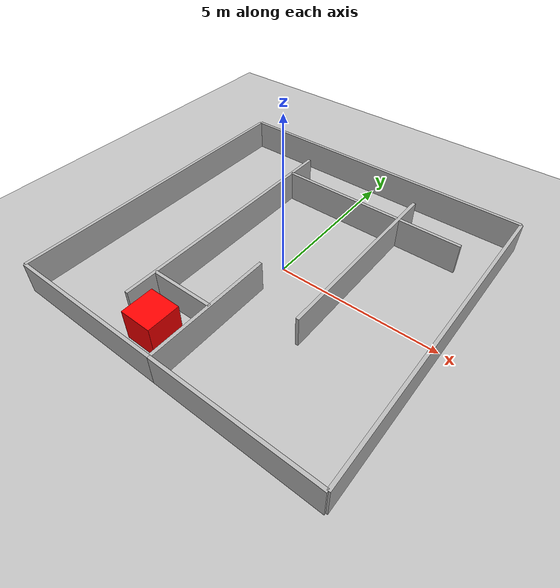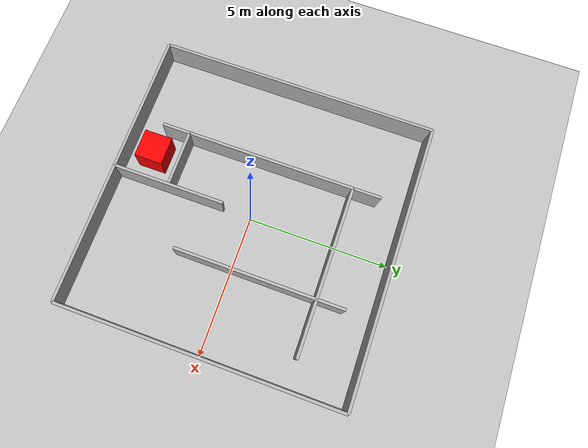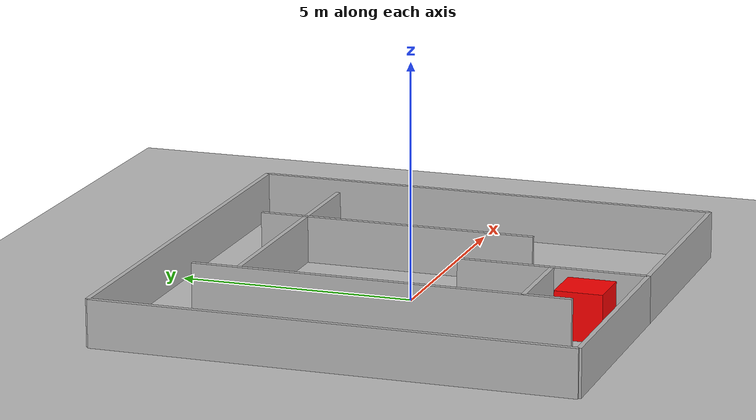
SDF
<?xml version="1.0" ?>
<sdf version="1.7">
  <world name="maze_lidar_world">
    <!-- SPAWN SPECIFICATION -->

    <!-- Core sim systems -->
    <plugin filename="gz-sim-physics-system" name="gz::sim::systems::Physics"/>
    <plugin filename="gz-sim-user-commands-system" name="gz::sim::systems::UserCommands"/>
    <plugin filename="gz-sim-scene-broadcaster-system" name="gz::sim::systems::SceneBroadcaster"/>
    <plugin filename="gz-sim-sensors-system" name="gz::sim::systems::Sensors">
      <render_engine>ogre2</render_engine>
    </plugin>

    <!-- coordinate system {-->
    <spherical_coordinates>
      <surface_model>EARTH_WGS84</surface_model>
      <latitude_deg>47.397743</latitude_deg>
      <longitude_deg>8.545594</longitude_deg>
      <elevation>0.0</elevation>
      <heading_deg>0</heading_deg>
    </spherical_coordinates>

    <!-- Light -->
    <light name="sun" type="directional">
      <cast_shadows>true</cast_shadows>
      <pose>0 0 10 0 0 0</pose>
      <diffuse>1 1 1 1</diffuse>
      <specular>0.1 0.1 0.1 1</specular>
      <direction>-0.5 0.1 -1</direction>
    </light>

    <!-- Ground plane -->
    <model name="ground_plane">
      <static>true</static>
      <link name="link">
        <collision name="collision">
          <geometry>
            <plane>
              <normal>0 0 1</normal>
              <size>50 50</size>
            </plane>
          </geometry>
        </collision>
        <visual name="visual">
          <geometry>
            <plane>
              <normal>0 0 1</normal>
              <size>50 50</size>
            </plane>
          </geometry>
          <material>
            <diffuse>0.75 0.75 0.75 1</diffuse>
            <specular>0.1 0.1 0.1 1</specular>
          </material>
        </visual>
      </link>
    </model>

    <!-- Simple maze (static)  -->
    <!-- Maze tuning:
         wall_thickness = 0.10
         wall_height    = 1.00
         wall_z         = wall_height/2 = 0.50
         Maze roughly spans x,y in [-5, +5]
    -->

    <model name="maze_walls">
      <static>true</static>
      <pose>0 0 0 0 0 0</pose>

      <link name="walls">

        <!-- Outer boundary (rectangle with an opening at the bottom) -->
        <!-- Top -->
        <collision name="c_top">
          <pose>0 5 0.50 0 0 0</pose>
          <geometry><box><size>10 0.10 1.00</size></box></geometry>
        </collision>
        <visual name="v_top">
          <pose>0 5 0.50 0 0 0</pose>
          <geometry><box><size>10 0.10 1.00</size></box></geometry>
        </visual>

        <!-- Left -->
        <collision name="c_left">
          <pose>-5 0 0.50 0 0 0</pose>
          <geometry><box><size>0.10 10 1.00</size></box></geometry>
        </collision>
        <visual name="v_left">
          <pose>-5 0 0.50 0 0 0</pose>
          <geometry><box><size>0.10 10 1.00</size></box></geometry>
        </visual>

        <!-- Right -->
        <collision name="c_right">
          <pose>5 0 0.50 0 0 0</pose>
          <geometry><box><size>0.10 10 1.00</size></box></geometry>
        </collision>
        <visual name="v_right">
          <pose>5 0 0.50 0 0 0</pose>
          <geometry><box><size>0.10 10 1.00</size></box></geometry>
        </visual>

        <!-- Bottom split into two pieces (opening centered at y=-5) -->
        <collision name="c_bot_left">
          <pose>-2.5 -5 0.50 0 0 0</pose>
          <geometry><box><size>5 0.10 1.00</size></box></geometry>
        </collision>
        <visual name="v_bot_left">
          <pose>-2.5 -5 0.50 0 0 0</pose>
          <geometry><box><size>5 0.10 1.00</size></box></geometry>
        </visual>

        <collision name="c_bot_right">
          <pose>2.5 -5 0.50 0 0 0</pose>
          <geometry><box><size>5 0.10 1.00</size></box></geometry>
        </collision>
        <visual name="v_bot_right">
          <pose>2.5 -5 0.50 0 0 0</pose>
          <geometry><box><size>5 0.10 1.00</size></box></geometry>
        </visual>

        <!-- Inner maze walls (a simple “corridor + turns” layout) -->
        <!-- Vertical spine -->
        <collision name="c_v1">
          <pose>-2 0 0.50 0 0 0</pose>
          <geometry><box><size>0.10 8 1.00</size></box></geometry>
        </collision>
        <visual name="v_v1">
          <pose>-2 0 0.50 0 0 0</pose>
          <geometry><box><size>0.10 8 1.00</size></box></geometry>
        </visual>

        <!-- Horizontal bars -->
        <collision name="c_h1">
          <pose>1 3 0.50 0 0 0</pose>
          <geometry><box><size>6 0.10 1.00</size></box></geometry>
        </collision>
        <visual name="v_h1">
          <pose>1 3 0.50 0 0 0</pose>
          <geometry><box><size>6 0.10 1.00</size></box></geometry>
        </visual>

        <!-- More verticals -->
        <collision name="c_v2">
          <pose>2 1 0.50 0 0 0</pose>
          <geometry><box><size>0.10 6 1.00</size></box></geometry>
        </collision>
        <visual name="v_v2">
          <pose>2 1 0.50 0 0 0</pose>
          <geometry><box><size>0.10 6 1.00</size></box></geometry>
        </visual>

        <collision name="c_v3">
          <pose>0 -3 0.50 0 0 0</pose>
          <geometry><box><size>0.10 4 1.00</size></box></geometry>
        </collision>
        <visual name="v_v3">
          <pose>0 -3 0.50 0 0 0</pose>
          <geometry><box><size>0.10 4 1.00</size></box></geometry>
        </visual>

        <!-- Short blocker to force a turn -->
        <collision name="c_block">
          <pose>-1 -3 0.50 0 0 0</pose>
          <geometry><box><size>2 0.10 1.00</size></box></geometry>
        </collision>
        <visual name="v_block">
          <pose>-1 -3 0.50 0 0 0</pose>
          <geometry><box><size>2 0.10 1.00</size></box></geometry>
        </visual>

      </link>

      <!-- Make walls a bit darker -->
      <material name="maze_mat">
        <diffuse>0.2 0.2 0.2 1</diffuse>
        <specular>0.05 0.05 0.05 1</specular>
      </material>
    </model>

    <!-- Target Hot Box -->
    <model name="hot_box">
        <static>true</static>

        <!-- Position: x y z roll pitch yaw -->
        <pose>-1.08 -4.00 0.5 0 0 0</pose>

        <!-- Custom semantic data -->
        <user_data>
            <temperature units="celsius">75</temperature>
        </user_data>

        <link name="link">
            <!-- Collision -->
            <collision name="collision">
            <geometry>
                <box>
                <size>1 1 1</size>
                </box>
            </geometry>
            </collision>

            <!-- Visual (RED BOX) -->
            <visual name="visual">
            <geometry>
                <box>
                <size>1 1 1</size>
                </box>
            </geometry>
            <material>
                <ambient>1 0 0 1</ambient>
                <diffuse>1 0 0 1</diffuse>
                <specular>0.2 0.2 0.2 1</specular>
            </material>
            </visual>
        </link>
    </model>

  </world>
</sdf>
